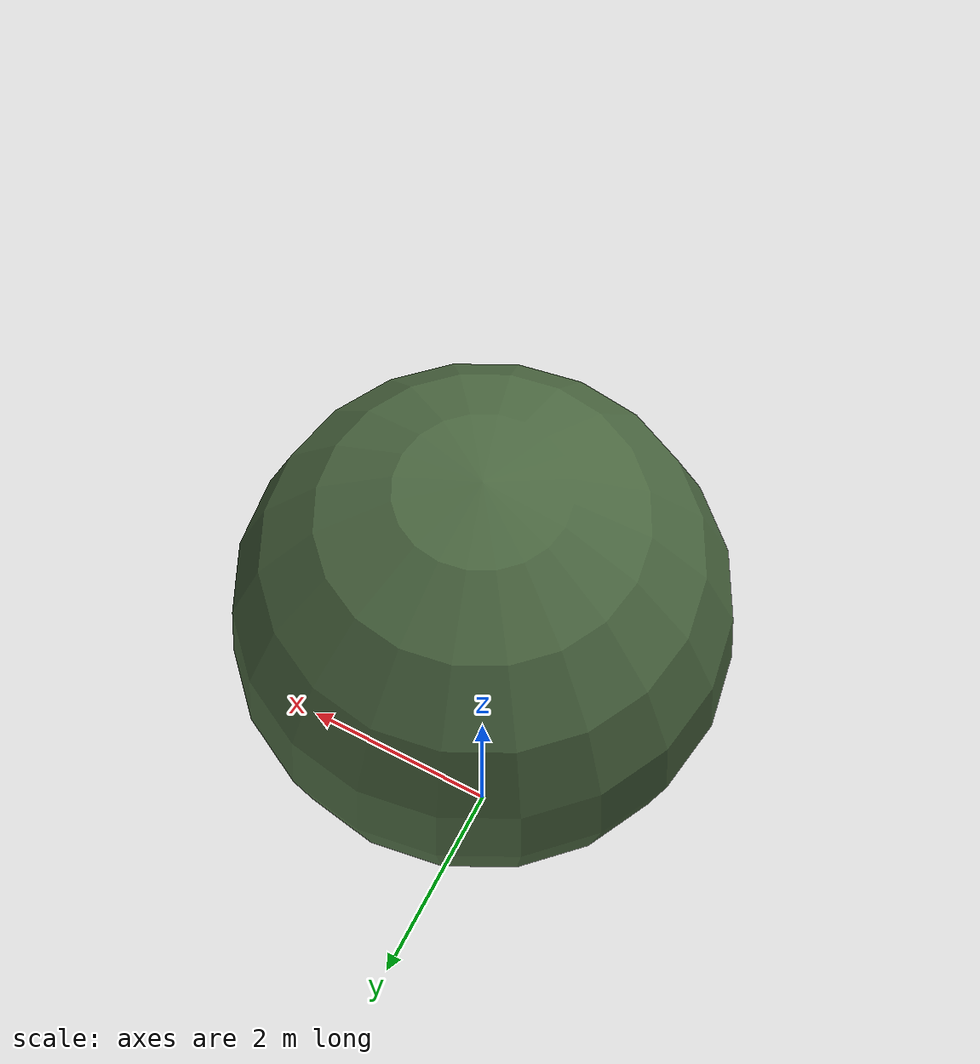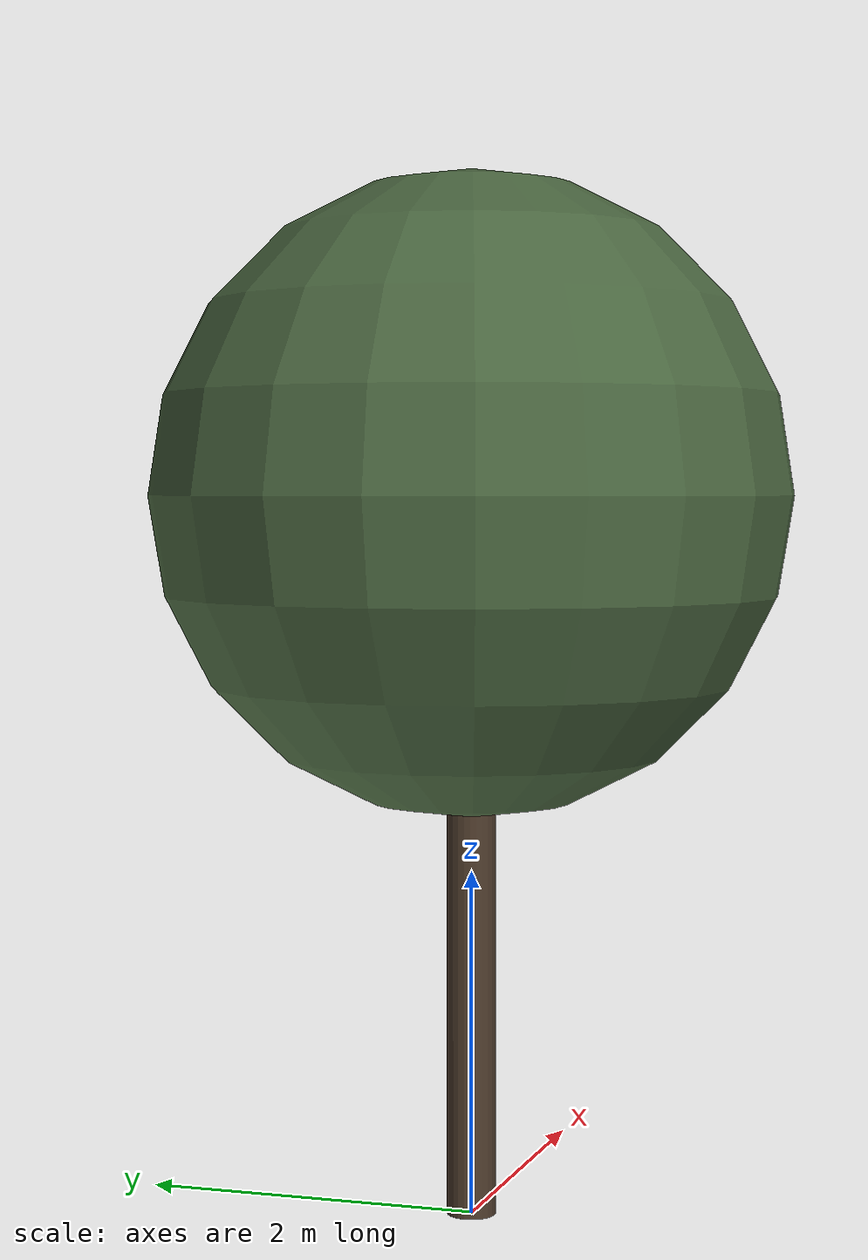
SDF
<?xml version="1.0" ?>
<sdf version="1.10">
  <model name="chene_vert_05">
    <static>true</static>

    <!-- Tronc -->
    <link name="trunk">
      <pose>0 0 1.8028095602111642 0 0 0</pose>
      <visual name="trunk_visual">
        <geometry>
          <cylinder>
            <radius>0.1413078519972583</radius>
            <length>3.6056191204223285</length>
          </cylinder>
        </geometry>
        <material>
          <ambient>0.29 0.22 0.16 1</ambient>
          <diffuse>0.29 0.22 0.16 1</diffuse>
          <specular>0.1 0.1 0.1 1</specular>
        </material>
      </visual>
      <collision name="trunk_collision">
        <geometry>
          <cylinder>
            <radius>0.1413078519972583</radius>
            <length>3.6056191204223285</length>
          </cylinder>
        </geometry>
      </collision>
    </link>

    <!-- Feuillage -->
    <link name="crown">
      <pose>0 0 4.157889084895565 0 0 0</pose>
      <visual name="crown_visual">
        <geometry>
          <sphere>
              <radius>1.8408998815774544</radius>
            </sphere>
        </geometry>
        <material>
          <ambient>0.29 0.40 0.25 1</ambient>
          <diffuse>0.29 0.40 0.25 1</diffuse>
          <specular>0.1 0.1 0.1 1</specular>
        </material>
      </visual>
      <collision name="crown_collision">
        <geometry>
          <sphere>
            <radius>1.4727199052619637</radius>
          </sphere>
        </geometry>
      </collision>
    </link>

    <!-- Joint tronc-feuillage -->
    <joint name="trunk_crown_joint" type="fixed">
      <parent>trunk</parent>
      <child>crown</child>
    </joint>

  </model>
</sdf>
